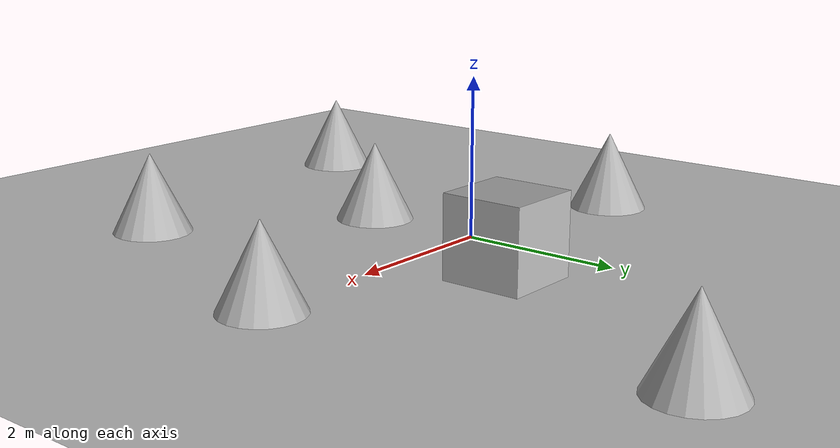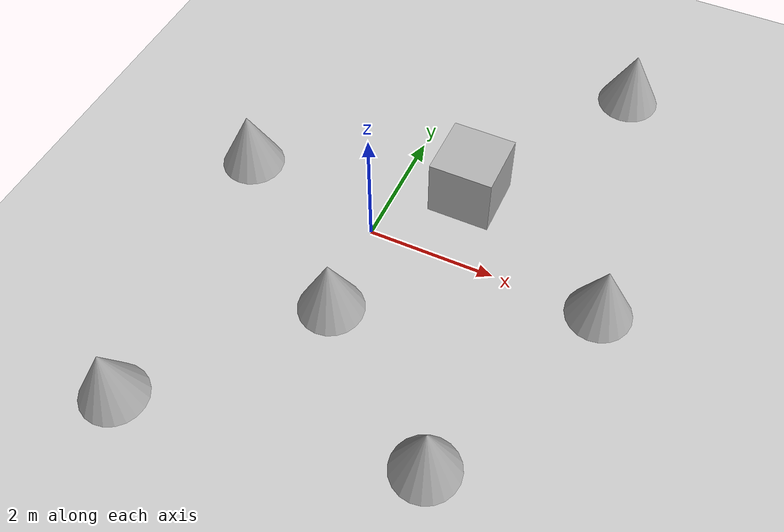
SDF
<sdf version="1.10">
 <world name="empty">
  <physics name="1ms" type="ignored">
   <max_step_size>0.001</max_step_size>
   <real_time_factor>1</real_time_factor>
   <real_time_update_rate>1000</real_time_update_rate>
  </physics>
  <plugin name="gz::sim::systems::Physics" filename="gz-sim-physics-system"/>
  <plugin name="gz::sim::systems::UserCommands" filename="gz-sim-user-commands-system"/>
  <plugin name="gz::sim::systems::SceneBroadcaster" filename="gz-sim-scene-broadcaster-system"/>
  <plugin name="gz::sim::systems::Contact" filename="gz-sim-contact-system"/>
  <plugin name="gz::sim::systems::Sensors" filename="gz-sim-sensors-system">
   <render_engine>ogre2</render_engine>
  </plugin>
  <gravity>0 0 -9.8000000000000007</gravity>
  <magnetic_field>5.5644999999999998e-06 2.2875799999999999e-05 -4.2388400000000002e-05</magnetic_field>
  <atmosphere type="adiabatic"/>
  <scene>
   <ambient>0.400000006 0.400000006 0.400000006 1</ambient>
   <background>0.699999988 0.699999988 0.699999988 1</background>
   <shadows>true</shadows>
  </scene>
  <model name="ground_plane">
   <static>true</static>
   <link name="link">
    <collision name="collision">
     <geometry><plane><normal>0 0 1</normal><size>100 100</size></plane></geometry>
    </collision>
    <visual name="visual">
     <geometry><plane><normal>0 0 1</normal><size>100 100</size></plane></geometry>
     <material>
      <ambient>0.800000012 0.800000012 0.800000012 1</ambient>
      <diffuse>0.800000012 0.800000012 0.800000012 1</diffuse>
      <specular>0.800000012 0.800000012 0.800000012 1</specular>
     </material>
    </visual>
    <inertial>
     <mass>1</mass>
     <inertia><ixx>1</ixx><ixy>0</ixy><ixz>0</ixz><iyy>1</iyy><iyz>0</iyz><izz>1</izz></inertia>
    </inertial>
   </link>
  </model>
  <model name="box">
   <pose>1.1010243380876461 1.2868644370919109 0.49999999990199806 6.2287739151293738e-22 9.3279666454713669e-22 -3.6315533669320137e-22</pose>
   <link name="box_link">
    <inertial>
     <inertia><ixx>0.16666</ixx><ixy>0</ixy><ixz>0</ixz><iyy>0.16666</iyy><iyz>0</iyz><izz>0.16666</izz></inertia>
     <mass>1</mass>
    </inertial>
    <collision name="box_collision"><geometry><box><size>1 1 1</size></box></geometry></collision>
    <visual name="box_visual">
     <geometry><box><size>1 1 1</size></box></geometry>
     <material>
      <ambient>0.300000012 0.300000012 0.300000012 1</ambient>
      <diffuse>0.699999988 0.699999988 0.699999988 1</diffuse>
      <specular>1 1 1 1</specular>
     </material>
    </visual>
   </link>
   <static>false</static>
  </model>
  <model name="cone">
   <pose>-2.3896629660734727 0.51014235836724975 0.49999999993296756 5.2546202908808827e-17 -7.7132841041629685e-10 -7.7012163526782331e-25</pose>
   <link name="cone_link">
    <inertial>
     <inertia>
      <ixx>0.074999999999999997</ixx>
      <ixy>0</ixy>
      <ixz>0</ixz>
      <iyy>0.074999999999999997</iyy>
      <iyz>0</iyz>
      <izz>0.074999999999999997</izz>
     </inertia>
     <mass>1</mass>
    </inertial>
    <collision name="cone_collision">
     <geometry><cone><radius>0.5</radius><length>1</length></cone></geometry>
    </collision>
    <visual name="cone_visual">
     <geometry><cone><radius>0.5</radius><length>1</length></cone></geometry>
     <material>
      <ambient>0.300000012 0.300000012 0.300000012 1</ambient>
      <diffuse>0.699999988 0.699999988 0.699999988 1</diffuse>
      <specular>1 1 1 1</specular>
     </material>
    </visual>
   </link>
   <static>false</static>
  </model>
  <model name="cone_1">
   <pose>0.077227418278234414 -1.4975556546141537 0.4999999999393625 4.0324799787609437e-11 1.6174331191423052e-10 1.9726297133172897e-17</pose>
   <link name="cone_link">
    <inertial>
     <inertia>
      <ixx>0.074999999999999997</ixx>
      <ixy>0</ixy>
      <ixz>0</ixz>
      <iyy>0.074999999999999997</iyy>
      <iyz>0</iyz>
      <izz>0.074999999999999997</izz>
     </inertia>
     <mass>1</mass>
    </inertial>
    <collision name="cone_collision">
     <geometry><cone><radius>0.5</radius><length>1</length></cone></geometry>
    </collision>
    <visual name="cone_visual">
     <geometry><cone><radius>0.5</radius><length>1</length></cone></geometry>
     <material>
      <ambient>0.300000012 0.300000012 0.300000012 1</ambient>
      <diffuse>0.699999988 0.699999988 0.699999988 1</diffuse>
      <specular>1 1 1 1</specular>
     </material>
    </visual>
   </link>
   <static>false</static>
  </model>
  <model name="cone_2">
   <pose>2.7530162370977806 4.4361135234591167 0.4999999999393625 4.0324799787556213e-11 1.6174331192144002e-10 1.972619055577631e-17</pose>
   <link name="cone_link">
    <inertial>
     <inertia>
      <ixx>0.074999999999999997</ixx>
      <ixy>0</ixy>
      <ixz>0</ixz>
      <iyy>0.074999999999999997</iyy>
      <iyz>0</iyz>
      <izz>0.074999999999999997</izz>
     </inertia>
     <mass>1</mass>
    </inertial>
    <collision name="cone_collision">
     <geometry><cone><radius>0.5</radius><length>1</length></cone></geometry>
    </collision>
    <visual name="cone_visual">
     <geometry><cone><radius>0.5</radius><length>1</length></cone></geometry>
     <material>
      <ambient>0.300000012 0.300000012 0.300000012 1</ambient>
      <diffuse>0.699999988 0.699999988 0.699999988 1</diffuse>
      <specular>1 1 1 1</specular>
     </material>
    </visual>
   </link>
   <static>false</static>
  </model>
  <model name="cone_3">
   <pose>3.6416151245611679 0.02978417233773157 0.4999999999393625 4.0324799788286536e-11 1.6174331191423073e-10 1.9726184733803626e-17</pose>
   <link name="cone_link">
    <inertial>
     <inertia>
      <ixx>0.074999999999999997</ixx>
      <ixy>0</ixy>
      <ixz>0</ixz>
      <iyy>0.074999999999999997</iyy>
      <iyz>0</iyz>
      <izz>0.074999999999999997</izz>
     </inertia>
     <mass>1</mass>
    </inertial>
    <collision name="cone_collision">
     <geometry><cone><radius>0.5</radius><length>1</length></cone></geometry>
    </collision>
    <visual name="cone_visual">
     <geometry><cone><radius>0.5</radius><length>1</length></cone></geometry>
     <material>
      <ambient>0.300000012 0.300000012 0.300000012 1</ambient>
      <diffuse>0.699999988 0.699999988 0.699999988 1</diffuse>
      <specular>1 1 1 1</specular>
     </material>
    </visual>
   </link>
   <static>false</static>
  </model>
  <model name="cone_4">
   <pose>-1.9524991425212588 -4.012968389136943 0.4999999999393625 4.0324799787322489e-11 1.6174331192144002e-10 1.9726190290389086e-17</pose>
   <link name="cone_link">
    <inertial>
     <inertia>
      <ixx>0.074999999999999997</ixx>
      <ixy>0</ixy>
      <ixz>0</ixz>
      <iyy>0.074999999999999997</iyy>
      <iyz>0</iyz>
      <izz>0.074999999999999997</izz>
     </inertia>
     <mass>1</mass>
    </inertial>
    <collision name="cone_collision">
     <geometry><cone><radius>0.5</radius><length>1</length></cone></geometry>
    </collision>
    <visual name="cone_visual">
     <geometry><cone><radius>0.5</radius><length>1</length></cone></geometry>
     <material>
      <ambient>0.300000012 0.300000012 0.300000012 1</ambient>
      <diffuse>0.699999988 0.699999988 0.699999988 1</diffuse>
      <specular>1 1 1 1</specular>
     </material>
    </visual>
   </link>
   <static>false</static>
  </model>
  <model name="cone_5">
   <pose>2.3487117279997087 -3.2256602185852947 0.4999999999393625 4.0324799787471633e-11 1.6174331192144023e-10 1.9726190041545656e-17</pose>
   <link name="cone_link">
    <inertial>
     <inertia>
      <ixx>0.074999999999999997</ixx>
      <ixy>0</ixy>
      <ixz>0</ixz>
      <iyy>0.074999999999999997</iyy>
      <iyz>0</iyz>
      <izz>0.074999999999999997</izz>
     </inertia>
     <mass>1</mass>
    </inertial>
    <collision name="cone_collision">
     <geometry><cone><radius>0.5</radius><length>1</length></cone></geometry>
    </collision>
    <visual name="cone_visual">
     <geometry><cone><radius>0.5</radius><length>1</length></cone></geometry>
     <material>
      <ambient>0.300000012 0.300000012 0.300000012 1</ambient>
      <diffuse>0.699999988 0.699999988 0.699999988 1</diffuse>
      <specular>1 1 1 1</specular>
     </material>
    </visual>
   </link>
   <static>false</static>
  </model>
  <light name="sun" type="directional">
   <pose>0 0 10 0 0 0</pose>
   <intensity>1</intensity>
   <direction>-0.5 0.10000000000000001 -0.90000000000000002</direction>
   <diffuse>0.800000012 0.800000012 0.800000012 1</diffuse>
   <specular>0.200000003 0.200000003 0.200000003 1</specular>
   <attenuation>
    <range>1000</range>
    <linear>0.01</linear>
    <constant>0.90000000000000002</constant>
    <quadratic>0.001</quadratic>
   </attenuation>
   <spot><inner_angle>0</inner_angle><outer_angle>0</outer_angle><falloff>0</falloff></spot>
  </light>
 </world>
</sdf>
